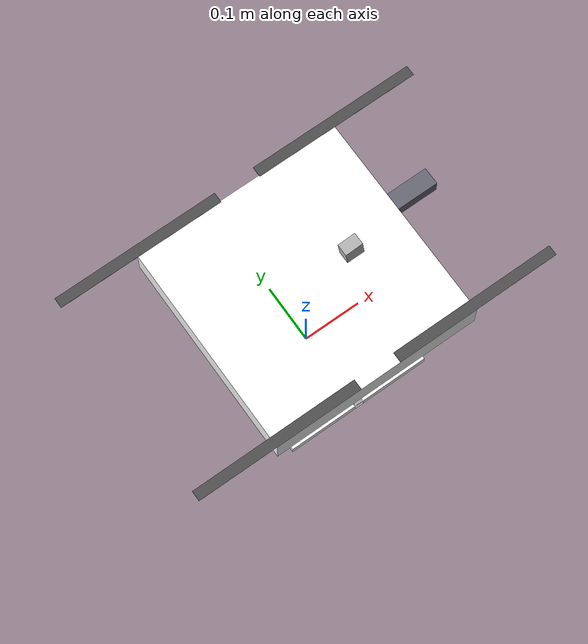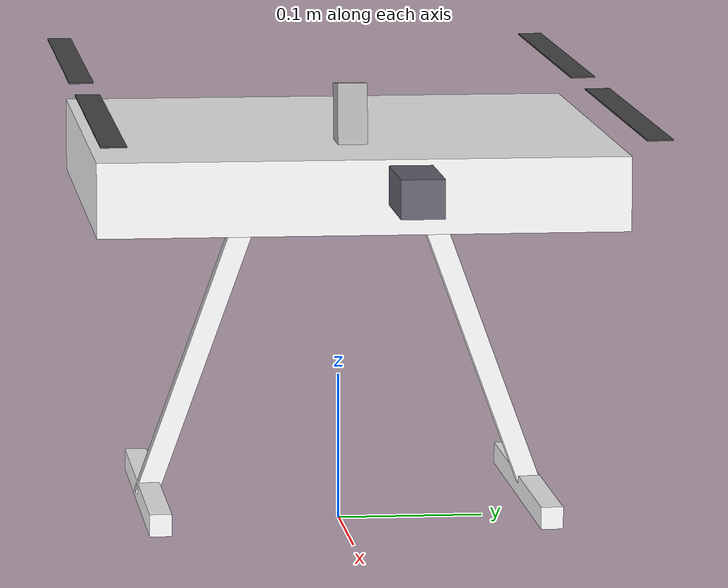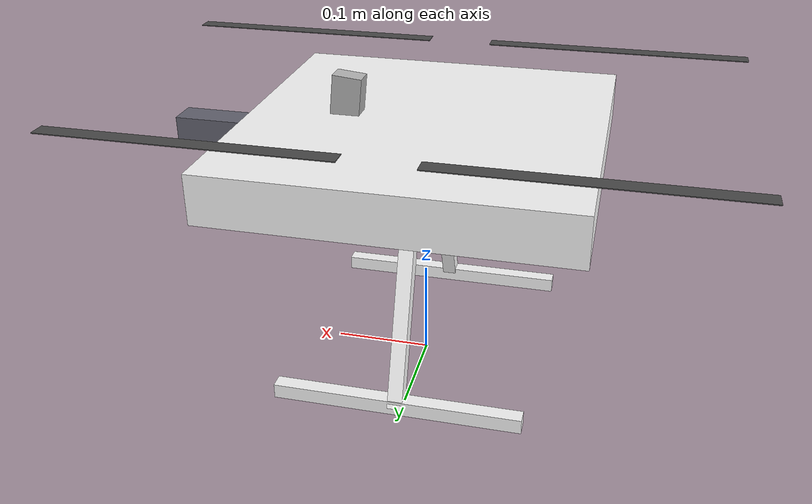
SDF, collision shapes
<?xml version="1.0" encoding="UTF-8"?>
<sdf version='1.9'>
  <model name='x500_depth'>
    <include merge='true'>
      <uri>x500</uri>
    </include>
    <include merge='true'>
      <uri>model://RealSenseD455</uri>
      <pose>.12 .03 .242 0 0 0</pose>
    </include>
    <joint name="CameraJoint" type="fixed">
      <parent>base_link</parent>
      <child>RealSenseD455/base_link</child>
      <pose relative_to="base_link">.12 .03 .242 0 0 0</pose>
    </joint>
  </model>
</sdf>

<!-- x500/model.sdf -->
<sdf version='1.9'>
  <model name='x500'>
<include merge='true'>
<uri>model://x500_base</uri>
</include>

    <plugin filename="gz-sim-multicopter-motor-model-system" name="gz::sim::systems::MulticopterMotorModel">
      <jointName>rotor_0_joint</jointName>
      <linkName>rotor_0</linkName>
      <turningDirection>ccw</turningDirection>
      <timeConstantUp>0.0125</timeConstantUp>
      <timeConstantDown>0.025</timeConstantDown>
      <maxRotVelocity>1000.0</maxRotVelocity>
      <motorConstant>8.54858e-06</motorConstant>
      <momentConstant>0.016</momentConstant>
      <commandSubTopic>command/motor_speed</commandSubTopic>
      <motorNumber>0</motorNumber>
      <rotorDragCoefficient>8.06428e-05</rotorDragCoefficient>
      <rollingMomentCoefficient>1e-06</rollingMomentCoefficient>
      <rotorVelocitySlowdownSim>10</rotorVelocitySlowdownSim>
      <motorType>velocity</motorType>
    </plugin>
    <plugin filename="gz-sim-multicopter-motor-model-system" name="gz::sim::systems::MulticopterMotorModel">
      <jointName>rotor_1_joint</jointName>
      <linkName>rotor_1</linkName>
      <turningDirection>ccw</turningDirection>
      <timeConstantUp>0.0125</timeConstantUp>
      <timeConstantDown>0.025</timeConstantDown>
      <maxRotVelocity>1000.0</maxRotVelocity>
      <motorConstant>8.54858e-06</motorConstant>
      <momentConstant>0.016</momentConstant>
      <commandSubTopic>command/motor_speed</commandSubTopic>
      <motorNumber>1</motorNumber>
      <rotorDragCoefficient>8.06428e-05</rotorDragCoefficient>
      <rollingMomentCoefficient>1e-06</rollingMomentCoefficient>
      <rotorVelocitySlowdownSim>10</rotorVelocitySlowdownSim>
      <motorType>velocity</motorType>
    </plugin>
    <plugin filename="gz-sim-multicopter-motor-model-system" name="gz::sim::systems::MulticopterMotorModel">
      <jointName>rotor_2_joint</jointName>
      <linkName>rotor_2</linkName>
      <turningDirection>cw</turningDirection>
      <timeConstantUp>0.0125</timeConstantUp>
      <timeConstantDown>0.025</timeConstantDown>
      <maxRotVelocity>1000.0</maxRotVelocity>
      <motorConstant>8.54858e-06</motorConstant>
      <momentConstant>0.016</momentConstant>
      <commandSubTopic>command/motor_speed</commandSubTopic>
      <motorNumber>2</motorNumber>
      <rotorDragCoefficient>8.06428e-05</rotorDragCoefficient>
      <rollingMomentCoefficient>1e-06</rollingMomentCoefficient>
      <rotorVelocitySlowdownSim>10</rotorVelocitySlowdownSim>
      <motorType>velocity</motorType>
    </plugin>
    <plugin filename="gz-sim-multicopter-motor-model-system" name="gz::sim::systems::MulticopterMotorModel">
      <jointName>rotor_3_joint</jointName>
      <linkName>rotor_3</linkName>
      <turningDirection>cw</turningDirection>
      <timeConstantUp>0.0125</timeConstantUp>
      <timeConstantDown>0.025</timeConstantDown>
      <maxRotVelocity>1000.0</maxRotVelocity>
      <motorConstant>8.54858e-06</motorConstant>
      <momentConstant>0.016</momentConstant>
      <commandSubTopic>command/motor_speed</commandSubTopic>
      <motorNumber>3</motorNumber>
      <rotorDragCoefficient>8.06428e-05</rotorDragCoefficient>
      <rollingMomentCoefficient>1e-06</rollingMomentCoefficient>
      <rotorVelocitySlowdownSim>10</rotorVelocitySlowdownSim>
      <motorType>velocity</motorType>
    </plugin>
  </model>
</sdf>

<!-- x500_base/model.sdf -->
<sdf version='1.9'>
  <model name='x500_base'>
<!-- ================== LW20 雷达，64线3D扫描安装在无人机正前方 ================== -->
<link name="lidar_sensor_link">
  <!-- Pose 相对于 base_link，放在无人机正前方并略向下倾 -->
  <pose relative_to="base_link">0.08 0 0.05 0 -0.1 0</pose>

  <!-- 惯性属性 -->
  <inertial>
    <mass>0.02</mass>
    <inertia>
      <ixx>0.000004</ixx>
      <iyy>0.000004</iyy>
      <izz>0.000002</izz>
      <ixy>0</ixy>
      <ixz>0</ixz>
      <iyz>0</iyz>
    </inertia>
  </inertial>

  <!-- 可视化模型 -->
  <visual name="lidar_visual">
    <geometry>
      <mesh>
        <uri>model://LW20/meshes/LW20.dae</uri>
      </mesh>
    </geometry>
  </visual>

  <!-- 碰撞体 -->
  <collision name="lidar_collision">
    <geometry>
      <box>
        <size>0.03 0.02 0.043</size>
      </box>
    </geometry>
  </collision>

  <!-- GPU LiDAR 传感器，64线3D扫描 -->
  <sensor name="front_lidar" type="gpu_lidar">
    <gz_frame_id>lidar_sensor_link</gz_frame_id>
    <update_rate>50</update_rate>

    <ray>
      <scan>
        <horizontal>
          <samples>360</samples> <!-- 水平360°扫描 -->
          <min_angle>-3.14</min_angle>
          <max_angle>3.14</max_angle>
        </horizontal>
        <vertical>
          <samples>64</samples> <!-- 垂直64线形成3D扫描 -->
          <min_angle>-0.35</min_angle> <!-- -20°，向下可见地面 -->
          <max_angle>0.35</max_angle>  <!-- +20°，向上可见障碍 -->
        </vertical>
      </scan>

      <range>
        <min>0.2</min>
        <max>20</max>
        <resolution>0.01</resolution>
      </range>
    </ray>

    <always_on>1</always_on>
    <visualize>true</visualize>
  </sensor>
</link>

<!-- 固定 joint，雷达随无人机移动 -->
<joint name="lidar_joint" type="fixed">
  <parent>base_link</parent>
  <child>lidar_sensor_link</child>
  <pose>0 0 0 0 0 0</pose>
</joint>
<!-- ================== LW20 雷达结束 ================== -->
    <pose>0 0 .24 0 0 0</pose>
    <self_collide>false</self_collide>
    <static>false</static>
    <link name="base_link">
      <inertial>
        <mass>2.0</mass>
        <inertia>
          <ixx>0.02166666666666667</ixx>
          <ixy>0</ixy>
          <ixz>0</ixz>
          <iyy>0.02166666666666667</iyy>
          <iyz>0</iyz>
          <izz>0.04000000000000001</izz>
        </inertia>
      </inertial>
      <gravity>true</gravity>
      <velocity_decay/>
      <visual name="base_link_visual">
        <pose>0 0 .025 0 0 3.141592654</pose>
        <geometry>
          <mesh>
            <scale>1 1 1</scale>
            <uri>model://x500_base/meshes/NXP-HGD-CF.dae</uri>
          </mesh>
        </geometry>
      </visual>
      <visual name="5010_motor_base_0">
        <pose>0.174 0.174 .032 0 0 -.45</pose>
        <geometry>
          <mesh>
            <scale>1 1 1</scale>
            <uri>model://x500_base/meshes/5010Base.dae</uri>
          </mesh>
        </geometry>
      </visual>
      <visual name="5010_motor_base_1">
        <pose>-0.174 0.174 .032 0 0 -.45</pose>
        <geometry>
          <mesh>
            <scale>1 1 1</scale>
            <uri>model://x500_base/meshes/5010Base.dae</uri>
          </mesh>
        </geometry>
      </visual>
      <visual name="5010_motor_base_2">
        <pose>0.174 -0.174 .032 0 0 -.45</pose>
        <geometry>
          <mesh>
            <scale>1 1 1</scale>
            <uri>model://x500_base/meshes/5010Base.dae</uri>
          </mesh>
        </geometry>
      </visual>
      <visual name="5010_motor_base_3">
        <pose>-0.174 -0.174 .032 0 0 -.45</pose>
        <geometry>
          <mesh>
            <scale>1 1 1</scale>
            <uri>model://x500_base/meshes/5010Base.dae</uri>
          </mesh>
        </geometry>
      </visual>
      <visual name="NXP_FMUK66_FRONT">
        <pose>0.047 .001 .043 1 0 1.57</pose>
        <cast_shadows>false</cast_shadows>
        <geometry>
          <plane>
            <normal>0 0 1</normal>
            <size>.013 .007</size>
          </plane>
        </geometry>
        <material>
          <diffuse>1.0 1.0 1.0</diffuse>
          <specular>1.0 1.0 1.0</specular>
          <pbr>
            <metal>
              <albedo_map>model://x500_base/materials/textures/nxp.png</albedo_map>
            </metal>
          </pbr>
        </material>
      </visual>
      <visual name="NXP_FMUK66_TOP">
        <pose>-0.023 0 .0515 0 0 -1.57</pose>
        <cast_shadows>false</cast_shadows>
        <geometry>
          <plane>
            <normal>0 0 1</normal>
            <size>.013 .007</size>
          </plane>
        </geometry>
        <material>
          <diffuse>1.0 1.0 1.0</diffuse>
          <specular>1.0 1.0 1.0</specular>
          <pbr>
            <metal>
              <albedo_map>model://x500_base/materials/textures/nxp.png</albedo_map>
            </metal>
          </pbr>
        </material>
      </visual>
      <visual name="RDDRONE_FMUK66_TOP">
        <pose>-.03 0 .0515 0 0 -1.57</pose>
        <cast_shadows>false</cast_shadows>
        <geometry>
          <plane>
            <normal>0 0 1</normal>
            <size>.032 .0034</size>
          </plane>
        </geometry>
        <material>
          <diffuse>1.0 1.0 1.0</diffuse>
          <specular>1.0 1.0 1.0</specular>
          <pbr>
            <metal>
              <albedo_map>model://x500_base/materials/textures/rd.png</albedo_map>
            </metal>
          </pbr>
        </material>
      </visual>
      <collision name="base_link_collision_0">
        <pose>0 0 .007 0 0 0</pose>
        <geometry>
          <box>
            <size>0.35355339059327373 0.35355339059327373 0.05</size>
          </box>
        </geometry>
        <surface>
          <contact>
            <ode>
              <min_depth>0.001</min_depth>
              <max_vel>0</max_vel>
            </ode>
          </contact>
          <friction>
            <ode/>
          </friction>
        </surface>
      </collision>
      <collision name="base_link_collision_1">
        <pose>0 -0.098 -.123 -0.35 0 0</pose>
        <geometry>
          <box>
            <size>0.015 0.015 0.21</size>
          </box>
        </geometry>
        <surface>
          <contact>
            <ode>
              <min_depth>0.001</min_depth>
              <max_vel>0</max_vel>
            </ode>
          </contact>
          <friction>
            <ode/>
          </friction>
        </surface>
      </collision>
      <collision name="base_link_collision_2">
        <pose>0 0.098 -.123 0.35 0 0</pose>
        <geometry>
          <box>
            <size>0.015 0.015 0.21</size>
          </box>
        </geometry>
        <surface>
          <contact>
            <ode>
              <min_depth>0.001</min_depth>
              <max_vel>0</max_vel>
            </ode>
          </contact>
          <friction>
            <ode/>
          </friction>
        </surface>
      </collision>
      <collision name="base_link_collision_3">
        <pose>0 -0.132 -.2195 0 0 0</pose>
        <geometry>
          <box>
            <size>0.25 0.015 0.015</size>
          </box>
        </geometry>
        <surface>
          <contact>
            <ode>
              <min_depth>0.001</min_depth>
              <max_vel>0</max_vel>
            </ode>
          </contact>
          <friction>
            <ode/>
          </friction>
        </surface>
      </collision>
      <collision name="base_link_collision_4">
        <pose>0 0.132 -.2195 0 0 0</pose>
        <geometry>
          <box>
            <size>0.25 0.015 0.015</size>
          </box>
        </geometry>
        <surface>
          <contact>
            <ode>
              <min_depth>0.001</min_depth>
              <max_vel>0</max_vel>
            </ode>
          </contact>
          <friction>
            <ode/>
          </friction>
        </surface>
      </collision>
      <sensor name="air_pressure_sensor" type="air_pressure">
        <always_on>1</always_on>
        <update_rate>50</update_rate>
        <air_pressure>
          <pressure>
            <noise type="gaussian">
              <mean>0</mean>
              <stddev>0.01</stddev>
            </noise>
          </pressure>
        </air_pressure>
      </sensor>
      <sensor name="imu_sensor" type="imu">
        <always_on>1</always_on>
        <update_rate>250</update_rate>
        <imu>
          <angular_velocity>
            <x>
              <noise type="gaussian">
                <mean>0</mean>
                <stddev>0.00018665</stddev>
                <dynamic_bias_stddev>3.8785e-05</dynamic_bias_stddev>
                <dynamic_bias_correlation_time>1000</dynamic_bias_correlation_time>
              </noise>
            </x>
            <y>
              <noise type="gaussian">
                <mean>0</mean>
                <stddev>0.00018665</stddev>
                <dynamic_bias_stddev>3.8785e-05</dynamic_bias_stddev>
                <dynamic_bias_correlation_time>1000</dynamic_bias_correlation_time>
              </noise>
            </y>
            <z>
              <noise type="gaussian">
                <mean>0</mean>
                <stddev>0.00018665</stddev>
                <dynamic_bias_stddev>3.8785e-05</dynamic_bias_stddev>
                <dynamic_bias_correlation_time>1000</dynamic_bias_correlation_time>
              </noise>
            </z>
          </angular_velocity>
          <linear_acceleration>
            <x>
              <noise type="gaussian">
                <mean>0</mean>
                <stddev>0.00186</stddev>
                <dynamic_bias_stddev>0.006</dynamic_bias_stddev>
                <dynamic_bias_correlation_time>300</dynamic_bias_correlation_time>
              </noise>
            </x>
            <y>
              <noise type="gaussian">
                <mean>0</mean>
                <stddev>0.00186</stddev>
                <dynamic_bias_stddev>0.006</dynamic_bias_stddev>
                <dynamic_bias_correlation_time>300</dynamic_bias_correlation_time>
              </noise>
            </y>
            <z>
              <noise type="gaussian">
                <mean>0</mean>
                <stddev>0.00186</stddev>
                <dynamic_bias_stddev>0.006</dynamic_bias_stddev>
                <dynamic_bias_correlation_time>300</dynamic_bias_correlation_time>
              </noise>
            </z>
          </linear_acceleration>
        </imu>
      </sensor>
      <sensor name="navsat_sensor" type="navsat">
        <always_on>1</always_on>
        <update_rate>30</update_rate>
      </sensor>
    </link>
    <link name="rotor_0">
      <gravity>true</gravity>
      <self_collide>false</self_collide>
      <velocity_decay/>
      <pose>0.174 -0.174 0.06 0 0 0</pose>
      <inertial>
          <mass>0.016076923076923075</mass>
          <inertia>
            <ixx>3.8464910483993325e-07</ixx>
            <iyy>2.6115851691700804e-05</iyy>
            <izz>2.649858234714004e-05</izz>
          </inertia>
        </inertial>
      <visual name="rotor_0_visual">
        <pose>-0.022 -0.14638461538461536 -0.016 0 0 0</pose>
        <geometry>
          <mesh>
            <scale>0.8461538461538461 0.8461538461538461 0.8461538461538461</scale>
            <uri>model://x500_base/meshes/1345_prop_ccw.stl</uri>
          </mesh>
        </geometry>
        <material>
          <script>
            <name>Gazebo/DarkGrey</name>
            <uri>file://media/materials/scripts/gazebo.material</uri>
          </script>
        </material>
      </visual>
      <visual name="rotor_0_visual_motor_bell">
        <pose>0 0 -.032 0 0 0</pose>
        <geometry>
          <mesh>
            <scale>1 1 1</scale>
            <uri>model://x500_base/meshes/5010Bell.dae</uri>
          </mesh>
        </geometry>
      </visual>
      <collision name="rotor_0_collision">
        <pose>0 0 0 0 0 0 </pose>
        <geometry>
          <box>
            <size>0.2792307692307692 0.016923076923076923 0.0008461538461538462</size>
          </box>
        </geometry>
        <surface>
          <contact>
            <ode>
              <min_depth>0.001</min_depth>
              <max_vel>0</max_vel>
            </ode>
          </contact>
          <friction>
            <ode/>
          </friction>
        </surface>
      </collision>
    </link>
    <joint name="rotor_0_joint" type="revolute">
      <parent>base_link</parent>
      <child>rotor_0</child>
      <axis>
        <xyz>0 0 1</xyz>
        <limit>
          <lower>-1e+16</lower>
          <upper>1e+16</upper>
        </limit>
        <dynamics>
          <spring_reference>0</spring_reference>
          <spring_stiffness>0</spring_stiffness>
        </dynamics>
      </axis>
    </joint>
    <link name="rotor_1">
      <gravity>true</gravity>
      <self_collide>false</self_collide>
      <velocity_decay/>
      <pose>-0.174 0.174 0.06 0 0 0</pose>
      <inertial>
          <mass>0.016076923076923075</mass>
          <inertia>
            <ixx>3.8464910483993325e-07</ixx>
            <iyy>2.6115851691700804e-05</iyy>
            <izz>2.649858234714004e-05</izz>
          </inertia>
        </inertial>
      <visual name="rotor_1_visual">
        <pose>-0.022 -0.14638461538461536 -0.016 0 0 0</pose>
        <geometry>
          <mesh>
            <scale>0.8461538461538461 0.8461538461538461 0.8461538461538461</scale>
            <uri>model://x500_base/meshes/1345_prop_ccw.stl</uri>
          </mesh>
        </geometry>
        <material>
          <script>
            <name>Gazebo/DarkGrey</name>
            <uri>file://media/materials/scripts/gazebo.material</uri>
          </script>
        </material>
      </visual>
      <visual name="rotor_1_visual_motor_top">
        <pose>0 0 -.032 0 0 0</pose>
        <geometry>
          <mesh>
            <scale>1 1 1</scale>
            <uri>model://x500_base/meshes/5010Bell.dae</uri>
          </mesh>
        </geometry>
      </visual>
      <collision name="rotor_1_collision">
        <pose>0 0 0 0 0 0 </pose>
        <geometry>
          <box>
            <size>0.2792307692307692 0.016923076923076923 0.0008461538461538462</size>
          </box>
        </geometry>
        <surface>
          <contact>
            <ode>
              <min_depth>0.001</min_depth>
              <max_vel>0</max_vel>
            </ode>
          </contact>
          <friction>
            <ode/>
          </friction>
        </surface>
      </collision>
    </link>
    <joint name="rotor_1_joint" type="revolute">
      <parent>base_link</parent>
      <child>rotor_1</child>
      <axis>
        <xyz>0 0 1</xyz>
        <limit>
          <lower>-1e+16</lower>
          <upper>1e+16</upper>
        </limit>
        <dynamics>
          <spring_reference>0</spring_reference>
          <spring_stiffness>0</spring_stiffness>
        </dynamics>
      </axis>
    </joint>
    <link name="rotor_2">
      <gravity>true</gravity>
      <self_collide>false</self_collide>
      <velocity_decay/>
      <pose>0.174 0.174 0.06 0 0 0</pose>
      <inertial>
          <mass>0.016076923076923075</mass>
          <inertia>
            <ixx>3.8464910483993325e-07</ixx>
            <iyy>2.6115851691700804e-05</iyy>
            <izz>2.649858234714004e-05</izz>
          </inertia>
        </inertial>
      <visual name="rotor_2_visual">
        <pose>-0.022 -0.14638461538461536 -0.016 0 0 0</pose>
        <geometry>
          <mesh>
            <scale>0.8461538461538461 0.8461538461538461 0.8461538461538461</scale>
            <uri>model://x500_base/meshes/1345_prop_cw.stl</uri>
          </mesh>
        </geometry>
        <material>
          <script>
            <name>Gazebo/DarkGrey</name>
            <uri>file://media/materials/scripts/gazebo.material</uri>
          </script>
        </material>
      </visual>
      <visual name="rotor_2_visual_motor_top">
        <pose>0 0 -.032 0 0 0</pose>
        <geometry>
          <mesh>
            <scale>1 1 1</scale>
            <uri>model://x500_base/meshes/5010Bell.dae</uri>
          </mesh>
        </geometry>
      </visual>
      <collision name="rotor_2_collision">
        <pose>0 0 0 0 0 0 </pose>
        <geometry>
          <box>
            <size>0.2792307692307692 0.016923076923076923 0.0008461538461538462</size>
          </box>
        </geometry>
        <surface>
          <contact>
            <ode>
              <min_depth>0.001</min_depth>
              <max_vel>0</max_vel>
            </ode>
          </contact>
          <friction>
            <ode/>
          </friction>
        </surface>
      </collision>
    </link>
    <joint name="rotor_2_joint" type="revolute">
      <parent>base_link</parent>
      <child>rotor_2</child>
      <axis>
        <xyz>0 0 1</xyz>
        <limit>
          <lower>-1e+16</lower>
          <upper>1e+16</upper>
        </limit>
        <dynamics>
          <spring_reference>0</spring_reference>
          <spring_stiffness>0</spring_stiffness>
        </dynamics>
      </axis>
    </joint>
    <link name="rotor_3">
      <gravity>true</gravity>
      <self_collide>false</self_collide>
      <velocity_decay/>
      <pose>-0.174 -0.174 0.06 0 0 0</pose>
      <inertial>
          <mass>0.016076923076923075</mass>
          <inertia>
            <ixx>3.8464910483993325e-07</ixx>
            <iyy>2.6115851691700804e-05</iyy>
            <izz>2.649858234714004e-05</izz>
          </inertia>
        </inertial>
      <visual name="rotor_3_visual">
        <pose>-0.022 -0.14638461538461536 -0.016 0 0 0</pose>
        <geometry>
          <mesh>
            <scale>0.8461538461538461 0.8461538461538461 0.8461538461538461</scale>
            <uri>model://x500_base/meshes/1345_prop_cw.stl</uri>
          </mesh>
        </geometry>
        <material>
          <script>
            <name>Gazebo/DarkGrey</name>
            <uri>file://media/materials/scripts/gazebo.material</uri>
          </script>
        </material>
      </visual>
      <visual name="rotor_3_visual_motor_top">
        <pose>0 0 -.032 0 0 0</pose>
        <geometry>
          <mesh>
            <scale>1 1 1</scale>
            <uri>model://x500_base/meshes/5010Bell.dae</uri>
          </mesh>
        </geometry>
      </visual>
      <collision name="rotor_3_collision">
        <pose>0 0 0 0 0 0 </pose>
        <geometry>
          <box>
            <size>0.2792307692307692 0.016923076923076923 0.0008461538461538462</size>
          </box>
        </geometry>
        <surface>
          <contact>
            <ode>
              <min_depth>0.001</min_depth>
              <max_vel>0</max_vel>
            </ode>
          </contact>
          <friction>
            <ode/>
          </friction>
        </surface>
      </collision>
    </link>
    <joint name="rotor_3_joint" type="revolute">
      <parent>base_link</parent>
      <child>rotor_3</child>
      <axis>
        <xyz>0 0 1</xyz>
        <limit>
          <lower>-1e+16</lower>
          <upper>1e+16</upper>
        </limit>
        <dynamics>
          <spring_reference>0</spring_reference>
          <spring_stiffness>0</spring_stiffness>
        </dynamics>
      </axis>
    </joint>
  </model>
</sdf>

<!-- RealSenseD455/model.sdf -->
<sdf version='1.9'>
  <model name='RealSenseD455'>
    <pose>0 0 0 0 0 0</pose>
    <self_collide>false</self_collide>
    <static>false</static>
    <link name='RealSenseD455/base_link'>
      <pose>0 0 0 0 0 0</pose>
      <inertial>
        <pose>0.064 0 0.013 0 0 0</pose>
        <mass>0.09</mass>
        <inertia>
          <ixx>1.13775e-05</ixx>
          <ixy>0</ixy>
          <ixz>0</ixz>
          <iyy>0.00012795</iyy>
          <iyz>0</iyz>
          <izz>0.0001291875</izz>
        </inertia>
      </inertial>
      <visual name='RealSenseD455/visual'>
        <pose>0.064 0 0.013 0 0 0</pose>
        <geometry>
          <box>
            <size>0.128 0.029 0.026</size>
          </box>
        </geometry>
        <material>
          <ambient>0.4 0.4 0.45 1</ambient>
          <diffuse>0.4 0.4 0.45 1</diffuse>
          <specular>0.1 0.1 0.1 1</specular>
        </material>
      </visual>
      <collision name='RealSenseD455/collision'>
        <pose>0.064 0 0.013 0 0 0</pose>
        <geometry>
          <box>
            <size>0.128 0.029 0.026</size>
          </box>
        </geometry>
      </collision>
      <sensor name='RealSenseD455/rgbd' type='rgbd_camera'>
        <pose>0.1 0 0.013 0 0 0</pose>
        <always_on>1</always_on>
        <update_rate>30</update_rate>
        <visualize>true</visualize>
        <topic>realsense/rgbd</topic>
        <camera>
          <horizontal_fov>1.0472</horizontal_fov>
          <image>
            <width>1280</width>
            <height>720</height>
            <format>R8G8B8</format>
          </image>
          <clip>
            <near>0.1</near>
            <far>30</far>
          </clip>
        </camera>
        <depth_camera>
          <image>
            <width>1280</width>
            <height>720</height>
            <format>R_FLOAT32</format>
          </image>
          <clip>
            <near>0.1</near>
            <far>20</far>
          </clip>
        </depth_camera>
      </sensor>
      <gravity>true</gravity>
      <velocity_decay/>
    </link>
  </model>
</sdf>
